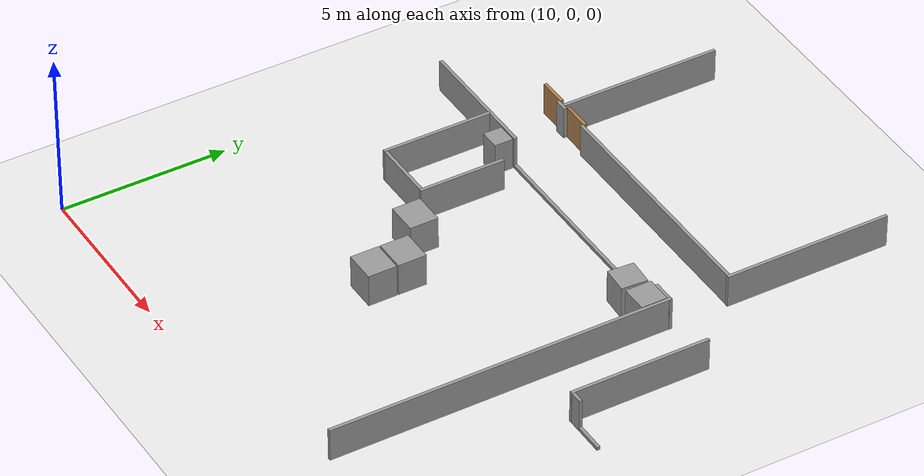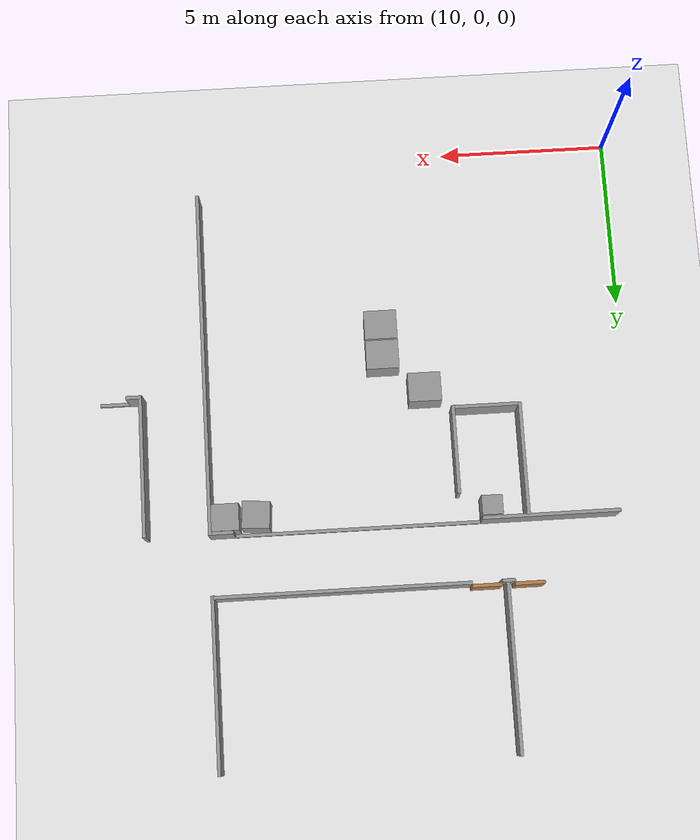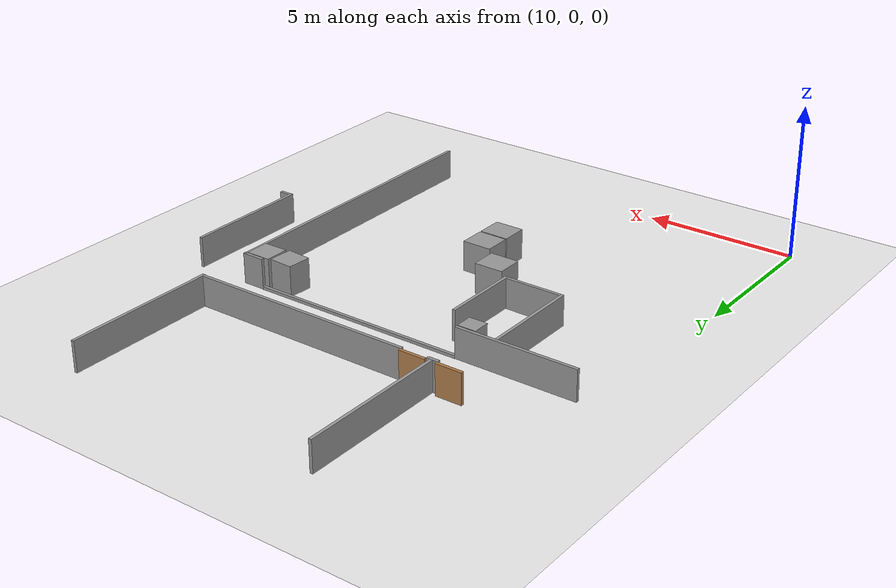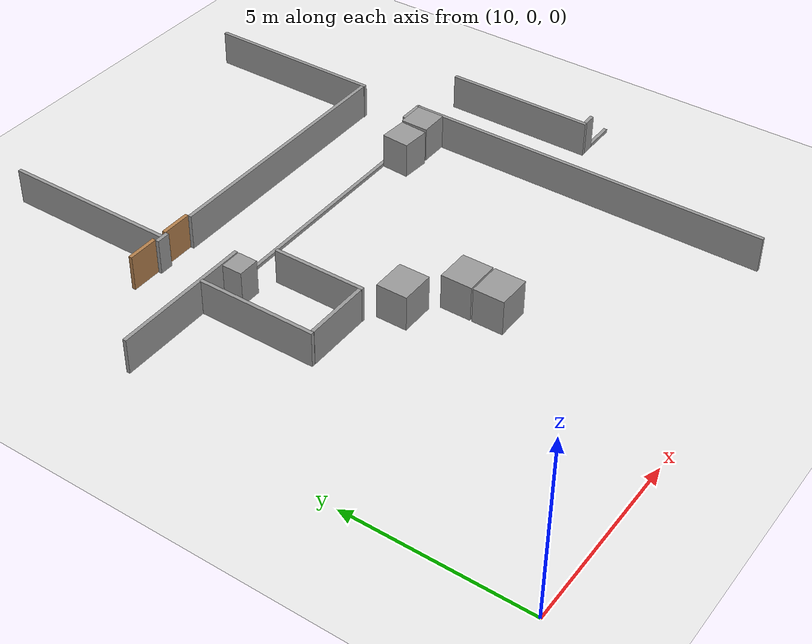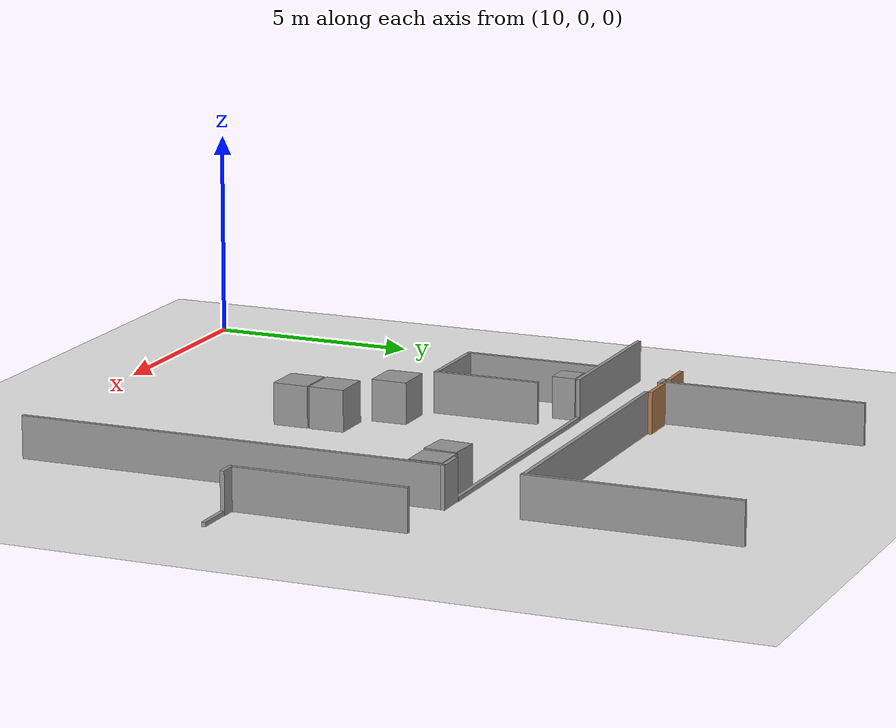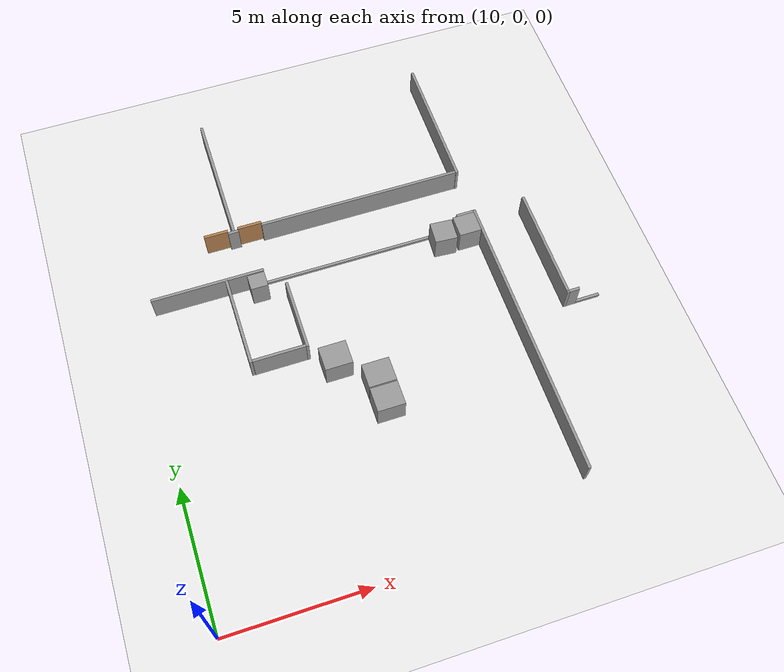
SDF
<sdf version="1.6">
 <world name="default">
  <model name="ground_plane">
   <static>1</static>
   <link name="link">
    <collision name="collision">
     <geometry><plane><normal>0 0 1</normal><size>100 100</size></plane></geometry>
     <surface><friction><ode><mu>100</mu><mu2>50</mu2></ode></friction></surface>
    </collision>
    <visual name="visual">
     <cast_shadows>0</cast_shadows>
     <geometry><plane><normal>0 0 1</normal><size>100 100</size></plane></geometry>
     <material>
      <script><uri>file://media/materials/scripts/gazebo.material</uri><name>Gazebo/WhiteGlow</name></script>
     </material>
    </visual>
   </link>
  </model>
  <model name="L81">
   <link name="link_1">
    <pose>6.1848 40.6724 0.017394 0 -0 0</pose>
    <inertial>
     <mass>0.639519</mass>
     <inertia>
      <ixx>0.0882035</ixx>
      <ixy>0</ixy>
      <ixz>0</ixz>
      <iyy>0.086567</iyy>
      <iyz>0</iyz>
      <izz>0.068184</izz>
     </inertia>
    </inertial>
    <visual name="visual">
     <geometry><box><size>0.790159 0.809357 1</size></box></geometry>
     <material>
      <lighting>1</lighting>
      <script><uri>file://media/materials/scripts/gazebo.material</uri><name>Gazebo/Grey</name></script>
      <shader type="pixel"><normal_map>__default__</normal_map></shader>
      <ambient>0.3 0.3 0.3 1</ambient>
      <diffuse>0.7 0.7 0.7 1</diffuse>
      <specular>0.01 0.01 0.01 1</specular>
      <emissive>0 0 0 1</emissive>
     </material>
    </visual>
    <collision name="collision">
     <geometry><box><size>0.790159 0.809357 1</size></box></geometry>
     <surface>
      <friction>
       <ode><mu>1</mu><mu2>1</mu2><fdir1>0 0 0</fdir1><slip1>0</slip1><slip2>0</slip2></ode>
       <torsional>
        <coefficient>1</coefficient>
        <patch_radius>0</patch_radius>
        <surface_radius>0</surface_radius>
        <use_patch_radius>1</use_patch_radius>
        <ode><slip>0</slip></ode>
       </torsional>
      </friction>
      <bounce><restitution_coefficient>0</restitution_coefficient><threshold>1e+06</threshold></bounce>
      <contact>
       <collide_without_contact>0</collide_without_contact>
       <collide_without_contact_bitmask>1</collide_without_contact_bitmask>
       <collide_bitmask>1</collide_bitmask>
       <ode>
        <soft_cfm>0</soft_cfm>
        <soft_erp>0.2</soft_erp>
        <kp>1e+13</kp>
        <kd>1</kd>
        <max_vel>0.01</max_vel>
        <min_depth>0</min_depth>
       </ode>
       <bullet>
        <split_impulse>1</split_impulse>
        <split_impulse_penetration_threshold>-0.01</split_impulse_penetration_threshold>
        <soft_cfm>0</soft_cfm>
        <soft_erp>0.2</soft_erp>
        <kp>1e+13</kp>
        <kd>1</kd>
       </bullet>
      </contact>
     </surface>
    </collision>
   </link>
   <link name="link_1_clone">
    <pose>6.20714 39.7777 0.017394 -0 -0 -0.068112</pose>
    <inertial>
     <mass>0.639519</mass>
     <inertia>
      <ixx>0.0882035</ixx>
      <ixy>0</ixy>
      <ixz>0</ixz>
      <iyy>0.086567</iyy>
      <iyz>0</iyz>
      <izz>0.068184</izz>
     </inertia>
    </inertial>
    <visual name="visual">
     <geometry><box><size>0.790159 0.809357 1</size></box></geometry>
     <material>
      <lighting>1</lighting>
      <script><uri>file://media/materials/scripts/gazebo.material</uri><name>Gazebo/Grey</name></script>
      <shader type="pixel"><normal_map>__default__</normal_map></shader>
      <ambient>0.3 0.3 0.3 1</ambient>
      <diffuse>0.7 0.7 0.7 1</diffuse>
      <specular>0.01 0.01 0.01 1</specular>
      <emissive>0 0 0 1</emissive>
     </material>
    </visual>
    <collision name="collision">
     <geometry><box><size>0.790159 0.809357 1</size></box></geometry>
     <surface>
      <friction>
       <ode><mu>1</mu><mu2>1</mu2><fdir1>0 0 0</fdir1><slip1>0</slip1><slip2>0</slip2></ode>
       <torsional>
        <coefficient>1</coefficient>
        <patch_radius>0</patch_radius>
        <surface_radius>0</surface_radius>
        <use_patch_radius>1</use_patch_radius>
        <ode><slip>0</slip></ode>
       </torsional>
      </friction>
      <bounce><restitution_coefficient>0</restitution_coefficient><threshold>1e+06</threshold></bounce>
      <contact>
       <collide_without_contact>0</collide_without_contact>
       <collide_without_contact_bitmask>1</collide_without_contact_bitmask>
       <collide_bitmask>1</collide_bitmask>
       <ode>
        <soft_cfm>0</soft_cfm>
        <soft_erp>0.2</soft_erp>
        <kp>1e+13</kp>
        <kd>1</kd>
        <max_vel>0.01</max_vel>
        <min_depth>0</min_depth>
       </ode>
       <bullet>
        <split_impulse>1</split_impulse>
        <split_impulse_penetration_threshold>-0.01</split_impulse_penetration_threshold>
        <soft_cfm>0</soft_cfm>
        <soft_erp>0.2</soft_erp>
        <kp>1e+13</kp>
        <kd>1</kd>
       </bullet>
      </contact>
     </surface>
    </collision>
   </link>
   <link name="link_clone_0_clone_0_clone_0_clone_clone_clone">
    <pose>9.8744 43.2024 0 0 -0 0</pose>
    <inertial>
     <mass>0.0251424</mass>
     <inertia>
      <ixx>0.00252554</ixx>
      <ixy>0</ixy>
      <ixz>0</ixz>
      <iyy>0.00211616</iyy>
      <iyz>0</iyz>
      <izz>0.00045129</izz>
     </inertia>
    </inertial>
    <visual name="visual">
     <geometry><box><size>0.1 0.453202 1</size></box></geometry>
     <material>
      <script><name>Gazebo/Grey</name><uri>file://media/materials/scripts/gazebo.material</uri></script>
      <shader type="pixel"><normal_map>__default__</normal_map></shader>
      <ambient>0.3 0.3 0.3 1</ambient>
      <diffuse>0.7 0.7 0.7 1</diffuse>
      <specular>0.01 0.01 0.01 1</specular>
      <emissive>0 0 0 1</emissive>
     </material>
    </visual>
    <collision name="collision">
     <geometry><box><size>0.1 0.453202 1</size></box></geometry>
     <surface>
      <friction>
       <ode><mu>1</mu><mu2>1</mu2><fdir1>0 0 0</fdir1><slip1>0</slip1><slip2>0</slip2></ode>
       <torsional>
        <coefficient>1</coefficient>
        <patch_radius>0</patch_radius>
        <surface_radius>0</surface_radius>
        <use_patch_radius>1</use_patch_radius>
        <ode><slip>0</slip></ode>
       </torsional>
      </friction>
      <bounce><restitution_coefficient>0</restitution_coefficient><threshold>1e+06</threshold></bounce>
      <contact>
       <collide_without_contact>0</collide_without_contact>
       <collide_without_contact_bitmask>1</collide_without_contact_bitmask>
       <collide_bitmask>1</collide_bitmask>
       <ode>
        <soft_cfm>0</soft_cfm>
        <soft_erp>0.2</soft_erp>
        <kp>1e+13</kp>
        <kd>1</kd>
        <max_vel>0.01</max_vel>
        <min_depth>0</min_depth>
       </ode>
       <bullet>
        <split_impulse>1</split_impulse>
        <split_impulse_penetration_threshold>-0.01</split_impulse_penetration_threshold>
        <soft_cfm>0</soft_cfm>
        <soft_erp>0.2</soft_erp>
        <kp>1e+13</kp>
        <kd>1</kd>
       </bullet>
      </contact>
     </surface>
    </collision>
   </link>
   <link name="link_clone_0_clone_0_clone_2">
    <pose>3.89392 37.3914 -0 0 -0 0</pose>
    <inertial>
     <mass>0.417724</mass>
     <inertia>
      <ixx>1.94639</ixx>
      <ixy>0</ixy>
      <ixz>0</ixz>
      <iyy>0.0351584</iyy>
      <iyz>0</iyz>
      <izz>1.91193</izz>
     </inertia>
    </inertial>
    <visual name="visual">
     <geometry><box><size>0.1 7.41041 1</size></box></geometry>
     <material>
      <script><name>Gazebo/Grey</name><uri>file://media/materials/scripts/gazebo.material</uri></script>
      <shader type="pixel"><normal_map>__default__</normal_map></shader>
      <ambient>0.3 0.3 0.3 1</ambient>
      <diffuse>0.7 0.7 0.7 1</diffuse>
      <specular>0.01 0.01 0.01 1</specular>
      <emissive>0 0 0 1</emissive>
     </material>
    </visual>
    <collision name="collision">
     <geometry><box><size>0.1 7.41041 1</size></box></geometry>
     <surface>
      <friction>
       <ode><mu>1</mu><mu2>1</mu2><fdir1>0 0 0</fdir1><slip1>0</slip1><slip2>0</slip2></ode>
       <torsional>
        <coefficient>1</coefficient>
        <patch_radius>0</patch_radius>
        <surface_radius>0</surface_radius>
        <use_patch_radius>1</use_patch_radius>
        <ode><slip>0</slip></ode>
       </torsional>
      </friction>
      <bounce><restitution_coefficient>0</restitution_coefficient><threshold>1e+06</threshold></bounce>
      <contact>
       <collide_without_contact>0</collide_without_contact>
       <collide_without_contact_bitmask>1</collide_without_contact_bitmask>
       <collide_bitmask>1</collide_bitmask>
       <ode>
        <soft_cfm>0</soft_cfm>
        <soft_erp>0.2</soft_erp>
        <kp>1e+13</kp>
        <kd>1</kd>
        <max_vel>0.01</max_vel>
        <min_depth>0</min_depth>
       </ode>
       <bullet>
        <split_impulse>1</split_impulse>
        <split_impulse_penetration_threshold>-0.01</split_impulse_penetration_threshold>
        <soft_cfm>0</soft_cfm>
        <soft_erp>0.2</soft_erp>
        <kp>1e+13</kp>
        <kd>1</kd>
       </bullet>
      </contact>
     </surface>
    </collision>
   </link>
   <link name="link_clone_0_clone_0_clone_3">
    <pose>3.90051 32.6454 0 0 -0 0</pose>
    <inertial>
     <mass>0.0215676</mass>
     <inertia>
      <ixx>0.0020604</ixx>
      <ixy>0</ixy>
      <ixz>0</ixz>
      <iyy>0.00181527</iyy>
      <iyz>0</iyz>
      <izz>0.000281077</izz>
     </inertia>
    </inertial>
    <visual name="visual">
     <geometry><box><size>0.1 0.382608 1</size></box></geometry>
     <material>
      <script><name>Gazebo/Grey</name><uri>file://media/materials/scripts/gazebo.material</uri></script>
      <shader type="pixel"><normal_map>__default__</normal_map></shader>
      <ambient>0.3 0.3 0.3 1</ambient>
      <diffuse>0.7 0.7 0.7 1</diffuse>
      <specular>0.01 0.01 0.01 1</specular>
      <emissive>0 0 0 1</emissive>
     </material>
    </visual>
    <collision name="collision">
     <geometry><box><size>0.1 0.382608 1</size></box></geometry>
     <surface>
      <friction>
       <ode><mu>1</mu><mu2>1</mu2><fdir1>0 0 0</fdir1><slip1>0</slip1><slip2>0</slip2></ode>
       <torsional>
        <coefficient>1</coefficient>
        <patch_radius>0</patch_radius>
        <surface_radius>0</surface_radius>
        <use_patch_radius>1</use_patch_radius>
        <ode><slip>0</slip></ode>
       </torsional>
      </friction>
      <bounce><restitution_coefficient>0</restitution_coefficient><threshold>1e+06</threshold></bounce>
      <contact>
       <collide_without_contact>0</collide_without_contact>
       <collide_without_contact_bitmask>1</collide_without_contact_bitmask>
       <collide_bitmask>1</collide_bitmask>
       <ode>
        <soft_cfm>0</soft_cfm>
        <soft_erp>0.2</soft_erp>
        <kp>1e+13</kp>
        <kd>1</kd>
        <max_vel>0.01</max_vel>
        <min_depth>0</min_depth>
       </ode>
       <bullet>
        <split_impulse>1</split_impulse>
        <split_impulse_penetration_threshold>-0.01</split_impulse_penetration_threshold>
        <soft_cfm>0</soft_cfm>
        <soft_erp>0.2</soft_erp>
        <kp>1e+13</kp>
        <kd>1</kd>
       </bullet>
      </contact>
     </surface>
    </collision>
   </link>
   <link name="link_clone_0_clone_clone_0_clone_clone_clone_0">
    <pose>5.73609 31.2609 0 0 -0 0</pose>
    <inertial>
     <mass>1.43236</mass>
     <inertia><ixx>2.03597</ixx><ixy>0</ixy><ixz>0</ixz><iyy>0.120557</iyy><iyz>0</iyz><izz>1.9178</izz></inertia>
    </inertial>
    <visual name="visual">
     <geometry><box><size>0.1 4.0071 1</size></box></geometry>
     <material>
      <script><name>Gazebo/Grey</name><uri>file://media/materials/scripts/gazebo.material</uri></script>
      <shader type="pixel"><normal_map>__default__</normal_map></shader>
      <ambient>0.3 0.3 0.3 1</ambient>
      <diffuse>0.7 0.7 0.7 1</diffuse>
      <specular>0.01 0.01 0.01 1</specular>
      <emissive>0 0 0 1</emissive>
     </material>
    </visual>
    <collision name="collision">
     <geometry><box><size>0.1 4.0071 1</size></box></geometry>
     <surface>
      <friction>
       <ode><mu>1</mu><mu2>1</mu2><fdir1>0 0 0</fdir1><slip1>0</slip1><slip2>0</slip2></ode>
       <torsional>
        <coefficient>1</coefficient>
        <patch_radius>0</patch_radius>
        <surface_radius>0</surface_radius>
        <use_patch_radius>1</use_patch_radius>
        <ode><slip>0</slip></ode>
       </torsional>
      </friction>
      <bounce><restitution_coefficient>0</restitution_coefficient><threshold>1e+06</threshold></bounce>
      <contact>
       <collide_without_contact>0</collide_without_contact>
       <collide_without_contact_bitmask>1</collide_without_contact_bitmask>
       <collide_bitmask>1</collide_bitmask>
       <ode>
        <soft_cfm>0</soft_cfm>
        <soft_erp>0.2</soft_erp>
        <kp>1e+13</kp>
        <kd>1</kd>
        <max_vel>0.01</max_vel>
        <min_depth>0</min_depth>
       </ode>
       <bullet>
        <split_impulse>1</split_impulse>
        <split_impulse_penetration_threshold>-0.01</split_impulse_penetration_threshold>
        <soft_cfm>0</soft_cfm>
        <soft_erp>0.2</soft_erp>
        <kp>1e+13</kp>
        <kd>1</kd>
       </bullet>
      </contact>
     </surface>
    </collision>
   </link>
   <link name="link_clone_0_clone_clone_0_clone_clone_clone_1_clone_0_clone_0">
    <pose>5.73871 40.8124 0 0 -0 0</pose>
    <inertial>
     <mass>0.262825</mass>
     <inertia>
      <ixx>0.0337428</ixx>
      <ixy>0</ixy>
      <ixz>0</ixz>
      <iyy>0.0221211</iyy>
      <iyz>0</iyz>
      <izz>0.0120597</izz>
     </inertia>
    </inertial>
    <visual name="visual">
     <geometry><box><size>0.1 0.735267 1</size></box></geometry>
     <material>
      <script><name>Gazebo/Grey</name><uri>file://media/materials/scripts/gazebo.material</uri></script>
      <shader type="pixel"><normal_map>__default__</normal_map></shader>
      <ambient>0.3 0.3 0.3 1</ambient>
      <diffuse>0.7 0.7 0.7 1</diffuse>
      <specular>0.01 0.01 0.01 1</specular>
      <emissive>0 0 0 1</emissive>
     </material>
    </visual>
    <collision name="collision">
     <geometry><box><size>0.1 0.735267 1</size></box></geometry>
     <surface>
      <friction>
       <ode><mu>1</mu><mu2>1</mu2><fdir1>0 0 0</fdir1><slip1>0</slip1><slip2>0</slip2></ode>
       <torsional>
        <coefficient>1</coefficient>
        <patch_radius>0</patch_radius>
        <surface_radius>0</surface_radius>
        <use_patch_radius>1</use_patch_radius>
        <ode><slip>0</slip></ode>
       </torsional>
      </friction>
      <bounce><restitution_coefficient>0</restitution_coefficient><threshold>1e+06</threshold></bounce>
      <contact>
       <collide_without_contact>0</collide_without_contact>
       <collide_without_contact_bitmask>1</collide_without_contact_bitmask>
       <collide_bitmask>1</collide_bitmask>
       <ode>
        <soft_cfm>0</soft_cfm>
        <soft_erp>0.2</soft_erp>
        <kp>1e+13</kp>
        <kd>1</kd>
        <max_vel>0.01</max_vel>
        <min_depth>0</min_depth>
       </ode>
       <bullet>
        <split_impulse>1</split_impulse>
        <split_impulse_penetration_threshold>-0.01</split_impulse_penetration_threshold>
        <soft_cfm>0</soft_cfm>
        <soft_erp>0.2</soft_erp>
        <kp>1e+13</kp>
        <kd>1</kd>
       </bullet>
      </contact>
     </surface>
    </collision>
   </link>
   <link name="link_clone_0_clone_clone_0_clone_clone_clone_1_clone_0_clone_clone_clone">
    <pose>5.73673 36.8477 -0.459597 0 -0 0</pose>
    <inertial>
     <mass>2.56764</mass>
     <inertia><ixx>11.2543</ixx><ixy>0</ixy><ixz>0</ixz><iyy>0.21611</iyy><iyz>0</iyz><izz>11.0424</izz></inertia>
    </inertial>
    <visual name="visual">
     <geometry><box><size>0.1 7.18313 0.1</size></box></geometry>
     <material>
      <script><name>Gazebo/Grey</name><uri>file://media/materials/scripts/gazebo.material</uri></script>
      <shader type="pixel"><normal_map>__default__</normal_map></shader>
      <ambient>0.3 0.3 0.3 1</ambient>
      <diffuse>0.7 0.7 0.7 1</diffuse>
      <specular>0.01 0.01 0.01 1</specular>
      <emissive>0 0 0 1</emissive>
     </material>
    </visual>
    <collision name="collision">
     <geometry><box><size>0.1 7.18313 0.1</size></box></geometry>
     <surface>
      <friction>
       <ode><mu>1</mu><mu2>1</mu2><fdir1>0 0 0</fdir1><slip1>0</slip1><slip2>0</slip2></ode>
       <torsional>
        <coefficient>1</coefficient>
        <patch_radius>0</patch_radius>
        <surface_radius>0</surface_radius>
        <use_patch_radius>1</use_patch_radius>
        <ode><slip>0</slip></ode>
       </torsional>
      </friction>
      <bounce><restitution_coefficient>0</restitution_coefficient><threshold>1e+06</threshold></bounce>
      <contact>
       <collide_without_contact>0</collide_without_contact>
       <collide_without_contact_bitmask>1</collide_without_contact_bitmask>
       <collide_bitmask>1</collide_bitmask>
       <ode>
        <soft_cfm>0</soft_cfm>
        <soft_erp>0.2</soft_erp>
        <kp>1e+13</kp>
        <kd>1</kd>
        <max_vel>0.01</max_vel>
        <min_depth>0</min_depth>
       </ode>
       <bullet>
        <split_impulse>1</split_impulse>
        <split_impulse_penetration_threshold>-0.01</split_impulse_penetration_threshold>
        <soft_cfm>0</soft_cfm>
        <soft_erp>0.2</soft_erp>
        <kp>1e+13</kp>
        <kd>1</kd>
       </bullet>
      </contact>
     </surface>
    </collision>
   </link>
   <link name="link_clone_0_clone_clone_0_clone_clone_clone_1_clone_0_clone_clone_clone_2_clone_clone_clone">
    <pose>9.87755 43.8758 -0.44204 0 -0 0</pose>
    <inertial>
     <mass>0.433251</mass>
     <inertia>
      <ixx>0.0891427</ixx>
      <ixy>0</ixy>
      <ixz>0</ixz>
      <iyy>0.0364653</iyy>
      <iyz>0</iyz>
      <izz>0.0533995</izz>
     </inertia>
    </inertial>
    <visual name="visual">
     <geometry><box><size>0.1 0.9 0.1</size></box></geometry>
     <material>
      <script><name>Gazebo/Grey</name><uri>file://media/materials/scripts/gazebo.material</uri></script>
      <shader type="pixel"><normal_map>__default__</normal_map></shader>
      <ambient>0.3 0.3 0.3 1</ambient>
      <diffuse>0.7 0.7 0.7 1</diffuse>
      <specular>0.01 0.01 0.01 1</specular>
      <emissive>0 0 0 1</emissive>
     </material>
    </visual>
    <collision name="collision">
     <geometry><box><size>0.1 0.9 0.1</size></box></geometry>
     <surface>
      <friction>
       <ode><mu>1</mu><mu2>1</mu2><fdir1>0 0 0</fdir1><slip1>0</slip1><slip2>0</slip2></ode>
       <torsional>
        <coefficient>1</coefficient>
        <patch_radius>0</patch_radius>
        <surface_radius>0</surface_radius>
        <use_patch_radius>1</use_patch_radius>
        <ode><slip>0</slip></ode>
       </torsional>
      </friction>
      <bounce><restitution_coefficient>0</restitution_coefficient><threshold>1e+06</threshold></bounce>
      <contact>
       <collide_without_contact>0</collide_without_contact>
       <collide_without_contact_bitmask>1</collide_without_contact_bitmask>
       <collide_bitmask>1</collide_bitmask>
       <ode>
        <soft_cfm>0</soft_cfm>
        <soft_erp>0.2</soft_erp>
        <kp>1e+13</kp>
        <kd>1</kd>
        <max_vel>0.01</max_vel>
        <min_depth>0</min_depth>
       </ode>
       <bullet>
        <split_impulse>1</split_impulse>
        <split_impulse_penetration_threshold>-0.01</split_impulse_penetration_threshold>
        <soft_cfm>0</soft_cfm>
        <soft_erp>0.2</soft_erp>
        <kp>1e+13</kp>
        <kd>1</kd>
       </bullet>
      </contact>
     </surface>
    </collision>
   </link>
   <link name="link_clone_0_clone_clone_0_clone_clone_clone_1_clone_1_clone_clone_clone_clone">
    <pose>9.0385 32.9029 0 0 -0 0</pose>
    <inertial>
     <mass>0.280797</mass>
     <inertia>
      <ixx>0.103765</ixx>
      <ixy>0</ixy>
      <ixz>0</ixz>
      <iyy>0.0236337</iyy>
      <iyz>0</iyz>
      <izz>0.0805993</izz>
     </inertia>
    </inertial>
    <visual name="visual">
     <geometry><box><size>0.1 1.85323 1</size></box></geometry>
     <material>
      <script><name>Gazebo/Grey</name><uri>file://media/materials/scripts/gazebo.material</uri></script>
      <shader type="pixel"><normal_map>__default__</normal_map></shader>
      <ambient>0.3 0.3 0.3 1</ambient>
      <diffuse>0.7 0.7 0.7 1</diffuse>
      <specular>0.01 0.01 0.01 1</specular>
      <emissive>0 0 0 1</emissive>
     </material>
    </visual>
    <collision name="collision">
     <geometry><box><size>0.1 1.85323 1</size></box></geometry>
     <surface>
      <friction>
       <ode><mu>1</mu><mu2>1</mu2><fdir1>0 0 0</fdir1><slip1>0</slip1><slip2>0</slip2></ode>
       <torsional>
        <coefficient>1</coefficient>
        <patch_radius>0</patch_radius>
        <surface_radius>0</surface_radius>
        <use_patch_radius>1</use_patch_radius>
        <ode><slip>0</slip></ode>
       </torsional>
      </friction>
      <bounce><restitution_coefficient>0</restitution_coefficient><threshold>1e+06</threshold></bounce>
      <contact>
       <collide_without_contact>0</collide_without_contact>
       <collide_without_contact_bitmask>1</collide_without_contact_bitmask>
       <collide_bitmask>1</collide_bitmask>
       <ode>
        <soft_cfm>0</soft_cfm>
        <soft_erp>0.2</soft_erp>
        <kp>1e+13</kp>
        <kd>1</kd>
        <max_vel>0.01</max_vel>
        <min_depth>0</min_depth>
       </ode>
       <bullet>
        <split_impulse>1</split_impulse>
        <split_impulse_penetration_threshold>-0.01</split_impulse_penetration_threshold>
        <soft_cfm>0</soft_cfm>
        <soft_erp>0.2</soft_erp>
        <kp>1e+13</kp>
        <kd>1</kd>
       </bullet>
      </contact>
     </surface>
    </collision>
   </link>
   <link name="link_clone_0_clone_clone_0_clone_clone_clone_2_clone">
    <pose>3.79519 32.0379 -0 0 -0 0</pose>
    <inertial>
     <mass>1.01517</mass>
     <inertia><ixx>5.4708</ixx><ixy>0</ixy><ixz>0</ixz><iyy>0.0854436</iyy><iyz>0</iyz><izz>5.38705</izz></inertia>
    </inertial>
    <visual name="visual">
     <geometry><box><size>0.1 0.87 1</size></box></geometry>
     <material>
      <script><name>Gazebo/Wood</name><uri>file://media/materials/scripts/gazebo.material</uri></script>
      <shader type="pixel"><normal_map>__default__</normal_map></shader>
      <ambient>0.3 0.3 0.3 1</ambient>
      <diffuse>0.7 0.7 0.7 1</diffuse>
      <specular>0.01 0.01 0.01 1</specular>
      <emissive>0 0 0 1</emissive>
     </material>
    </visual>
    <collision name="collision">
     <geometry><box><size>0.1 0.87 1</size></box></geometry>
     <surface>
      <friction>
       <ode><mu>1</mu><mu2>1</mu2><fdir1>0 0 0</fdir1><slip1>0</slip1><slip2>0</slip2></ode>
       <torsional>
        <coefficient>1</coefficient>
        <patch_radius>0</patch_radius>
        <surface_radius>0</surface_radius>
        <use_patch_radius>1</use_patch_radius>
        <ode><slip>0</slip></ode>
       </torsional>
      </friction>
      <bounce><restitution_coefficient>0</restitution_coefficient><threshold>1e+06</threshold></bounce>
      <contact>
       <collide_without_contact>0</collide_without_contact>
       <collide_without_contact_bitmask>1</collide_without_contact_bitmask>
       <collide_bitmask>1</collide_bitmask>
       <ode>
        <soft_cfm>0</soft_cfm>
        <soft_erp>0.2</soft_erp>
        <kp>1e+13</kp>
        <kd>1</kd>
        <max_vel>0.01</max_vel>
        <min_depth>0</min_depth>
       </ode>
       <bullet>
        <split_impulse>1</split_impulse>
        <split_impulse_penetration_threshold>-0.01</split_impulse_penetration_threshold>
        <soft_cfm>0</soft_cfm>
        <soft_erp>0.2</soft_erp>
        <kp>1e+13</kp>
        <kd>1</kd>
       </bullet>
      </contact>
     </surface>
    </collision>
   </link>
   <link name="link_clone_0_clone_clone_0_clone_clone_clone_2_clone_clone">
    <pose>3.7954 33.2651 -0 0 -0 0</pose>
    <inertial>
     <mass>1.01517</mass>
     <inertia><ixx>5.4708</ixx><ixy>0</ixy><ixz>0</ixz><iyy>0.0854436</iyy><iyz>0</iyz><izz>5.38705</izz></inertia>
    </inertial>
    <visual name="visual">
     <geometry><box><size>0.1 0.87 1</size></box></geometry>
     <material>
      <script><name>Gazebo/Wood</name><uri>file://media/materials/scripts/gazebo.material</uri></script>
      <shader type="pixel"><normal_map>__default__</normal_map></shader>
      <ambient>0.3 0.3 0.3 1</ambient>
      <diffuse>0.7 0.7 0.7 1</diffuse>
      <specular>0.01 0.01 0.01 1</specular>
      <emissive>0 0 0 1</emissive>
     </material>
    </visual>
    <collision name="collision">
     <geometry><box><size>0.1 0.87 1</size></box></geometry>
     <surface>
      <friction>
       <ode><mu>1</mu><mu2>1</mu2><fdir1>0 0 0</fdir1><slip1>0</slip1><slip2>0</slip2></ode>
       <torsional>
        <coefficient>1</coefficient>
        <patch_radius>0</patch_radius>
        <surface_radius>0</surface_radius>
        <use_patch_radius>1</use_patch_radius>
        <ode><slip>0</slip></ode>
       </torsional>
      </friction>
      <bounce><restitution_coefficient>0</restitution_coefficient><threshold>1e+06</threshold></bounce>
      <contact>
       <collide_without_contact>0</collide_without_contact>
       <collide_without_contact_bitmask>1</collide_without_contact_bitmask>
       <collide_bitmask>1</collide_bitmask>
       <ode>
        <soft_cfm>0</soft_cfm>
        <soft_erp>0.2</soft_erp>
        <kp>1e+13</kp>
        <kd>1</kd>
        <max_vel>0.01</max_vel>
        <min_depth>0</min_depth>
       </ode>
       <bullet>
        <split_impulse>1</split_impulse>
        <split_impulse_penetration_threshold>-0.01</split_impulse_penetration_threshold>
        <soft_cfm>0</soft_cfm>
        <soft_erp>0.2</soft_erp>
        <kp>1e+13</kp>
        <kd>1</kd>
       </bullet>
      </contact>
     </surface>
    </collision>
   </link>
   <link name="link_clone_0_clone_clone_0_clone_clone_clone_2_clone_clone_0">
    <pose>6.10303 32.9506 0 0 -0 0</pose>
    <inertial>
     <mass>4.04511</mass>
     <inertia>
      <ixx>0.462473</ixx>
      <ixy>0</ixy>
      <ixz>0</ixz>
      <iyy>0.446013</iyy>
      <iyz>0</iyz>
      <izz>0.234301</izz>
     </inertia>
    </inertial>
    <visual name="visual">
     <geometry><box><size>0.568435 0.609874 1</size></box></geometry>
     <material>
      <script><name>Gazebo/Grey</name><uri>file://media/materials/scripts/gazebo.material</uri></script>
      <shader type="pixel"><normal_map>__default__</normal_map></shader>
      <ambient>0.3 0.3 0.3 1</ambient>
      <diffuse>0.7 0.7 0.7 1</diffuse>
      <specular>0.01 0.01 0.01 1</specular>
      <emissive>0 0 0 1</emissive>
     </material>
    </visual>
    <collision name="collision">
     <geometry><box><size>0.568435 0.609874 1</size></box></geometry>
     <surface>
      <friction>
       <ode><mu>1</mu><mu2>1</mu2><fdir1>0 0 0</fdir1><slip1>0</slip1><slip2>0</slip2></ode>
       <torsional>
        <coefficient>1</coefficient>
        <patch_radius>0</patch_radius>
        <surface_radius>0</surface_radius>
        <use_patch_radius>1</use_patch_radius>
        <ode><slip>0</slip></ode>
       </torsional>
      </friction>
      <bounce><restitution_coefficient>0</restitution_coefficient><threshold>1e+06</threshold></bounce>
      <contact>
       <collide_without_contact>0</collide_without_contact>
       <collide_without_contact_bitmask>1</collide_without_contact_bitmask>
       <collide_bitmask>1</collide_bitmask>
       <ode>
        <soft_cfm>0</soft_cfm>
        <soft_erp>0.2</soft_erp>
        <kp>1e+13</kp>
        <kd>1</kd>
        <max_vel>0.01</max_vel>
        <min_depth>0</min_depth>
       </ode>
       <bullet>
        <split_impulse>1</split_impulse>
        <split_impulse_penetration_threshold>-0.01</split_impulse_penetration_threshold>
        <soft_cfm>0</soft_cfm>
        <soft_erp>0.2</soft_erp>
        <kp>1e+13</kp>
        <kd>1</kd>
       </bullet>
      </contact>
     </surface>
    </collision>
   </link>
   <link name="link_clone_0_clone_clone_0_clone_clone_clone_2_clone_clone_0_clone_3">
    <pose>9.69841 34.6691 0 0 -0 0</pose>
    <inertial>
     <mass>9.70174</mass>
     <inertia><ixx>1.55976</ixx><ixy>0</ixy><ixz>0</ixz><iyy>1.40994</iyy><iyz>0</iyz><izz>1.35274</izz></inertia>
    </inertial>
    <visual name="visual">
     <geometry><box><size>0.862521 0.96398 1</size></box></geometry>
     <material>
      <script><name>Gazebo/Grey</name><uri>file://media/materials/scripts/gazebo.material</uri></script>
      <shader type="pixel"><normal_map>__default__</normal_map></shader>
      <ambient>0.3 0.3 0.3 1</ambient>
      <diffuse>0.7 0.7 0.7 1</diffuse>
      <specular>0.01 0.01 0.01 1</specular>
      <emissive>0 0 0 1</emissive>
     </material>
    </visual>
    <collision name="collision">
     <geometry><box><size>0.862521 0.96398 1</size></box></geometry>
     <surface>
      <friction>
       <ode><mu>1</mu><mu2>1</mu2><fdir1>0 0 0</fdir1><slip1>0</slip1><slip2>0</slip2></ode>
       <torsional>
        <coefficient>1</coefficient>
        <patch_radius>0</patch_radius>
        <surface_radius>0</surface_radius>
        <use_patch_radius>1</use_patch_radius>
        <ode><slip>0</slip></ode>
       </torsional>
      </friction>
      <bounce><restitution_coefficient>0</restitution_coefficient><threshold>1e+06</threshold></bounce>
      <contact>
       <collide_without_contact>0</collide_without_contact>
       <collide_without_contact_bitmask>1</collide_without_contact_bitmask>
       <collide_bitmask>1</collide_bitmask>
       <ode>
        <soft_cfm>0</soft_cfm>
        <soft_erp>0.2</soft_erp>
        <kp>1e+13</kp>
        <kd>1</kd>
        <max_vel>0.01</max_vel>
        <min_depth>0</min_depth>
       </ode>
       <bullet>
        <split_impulse>1</split_impulse>
        <split_impulse_penetration_threshold>-0.01</split_impulse_penetration_threshold>
        <soft_cfm>0</soft_cfm>
        <soft_erp>0.2</soft_erp>
        <kp>1e+13</kp>
        <kd>1</kd>
       </bullet>
      </contact>
     </surface>
    </collision>
   </link>
   <link name="link_clone_0_clone_clone_0_clone_clone_clone_2_clone_clone_0_clone_3_clone_0">
    <pose>10.7479 35.851 -0 0 -0 0</pose>
    <inertial>
     <mass>9.70174</mass>
     <inertia><ixx>1.55976</ixx><ixy>0</ixy><ixz>0</ixz><iyy>1.40994</iyy><iyz>0</iyz><izz>1.35274</izz></inertia>
    </inertial>
    <visual name="visual">
     <geometry><box><size>0.862521 0.96398 1</size></box></geometry>
     <material>
      <script><name>Gazebo/Grey</name><uri>file://media/materials/scripts/gazebo.material</uri></script>
      <shader type="pixel"><normal_map>__default__</normal_map></shader>
      <ambient>0.3 0.3 0.3 1</ambient>
      <diffuse>0.7 0.7 0.7 1</diffuse>
      <specular>0.01 0.01 0.01 1</specular>
      <emissive>0 0 0 1</emissive>
     </material>
    </visual>
    <collision name="collision">
     <geometry><box><size>0.862521 0.96398 1</size></box></geometry>
     <surface>
      <friction>
       <ode><mu>1</mu><mu2>1</mu2><fdir1>0 0 0</fdir1><slip1>0</slip1><slip2>0</slip2></ode>
       <torsional>
        <coefficient>1</coefficient>
        <patch_radius>0</patch_radius>
        <surface_radius>0</surface_radius>
        <use_patch_radius>1</use_patch_radius>
        <ode><slip>0</slip></ode>
       </torsional>
      </friction>
      <bounce><restitution_coefficient>0</restitution_coefficient><threshold>1e+06</threshold></bounce>
      <contact>
       <collide_without_contact>0</collide_without_contact>
       <collide_without_contact_bitmask>1</collide_without_contact_bitmask>
       <collide_bitmask>1</collide_bitmask>
       <ode>
        <soft_cfm>0</soft_cfm>
        <soft_erp>0.2</soft_erp>
        <kp>1e+13</kp>
        <kd>1</kd>
        <max_vel>0.01</max_vel>
        <min_depth>0</min_depth>
       </ode>
       <bullet>
        <split_impulse>1</split_impulse>
        <split_impulse_penetration_threshold>-0.01</split_impulse_penetration_threshold>
        <soft_cfm>0</soft_cfm>
        <soft_erp>0.2</soft_erp>
        <kp>1e+13</kp>
        <kd>1</kd>
       </bullet>
      </contact>
     </surface>
    </collision>
   </link>
   <link name="link_clone_0_clone_clone_0_clone_clone_clone_2_clone_clone_0_clone_3_clone_1">
    <pose>11.6547 35.8508 -0 0 -0 0</pose>
    <inertial>
     <mass>9.70174</mass>
     <inertia><ixx>1.55976</ixx><ixy>0</ixy><ixz>0</ixz><iyy>1.40994</iyy><iyz>0</iyz><izz>1.35274</izz></inertia>
    </inertial>
    <visual name="visual">
     <geometry><box><size>0.862521 0.96398 1</size></box></geometry>
     <material>
      <script><name>Gazebo/Grey</name><uri>file://media/materials/scripts/gazebo.material</uri></script>
      <shader type="pixel"><normal_map>__default__</normal_map></shader>
      <ambient>0.3 0.3 0.3 1</ambient>
      <diffuse>0.7 0.7 0.7 1</diffuse>
      <specular>0.01 0.01 0.01 1</specular>
      <emissive>0 0 0 1</emissive>
     </material>
    </visual>
    <collision name="collision">
     <geometry><box><size>0.862521 0.96398 1</size></box></geometry>
     <surface>
      <friction>
       <ode><mu>1</mu><mu2>1</mu2><fdir1>0 0 0</fdir1><slip1>0</slip1><slip2>0</slip2></ode>
       <torsional>
        <coefficient>1</coefficient>
        <patch_radius>0</patch_radius>
        <surface_radius>0</surface_radius>
        <use_patch_radius>1</use_patch_radius>
        <ode><slip>0</slip></ode>
       </torsional>
      </friction>
      <bounce><restitution_coefficient>0</restitution_coefficient><threshold>1e+06</threshold></bounce>
      <contact>
       <collide_without_contact>0</collide_without_contact>
       <collide_without_contact_bitmask>1</collide_without_contact_bitmask>
       <collide_bitmask>1</collide_bitmask>
       <ode>
        <soft_cfm>0</soft_cfm>
        <soft_erp>0.2</soft_erp>
        <kp>1e+13</kp>
        <kd>1</kd>
        <max_vel>0.01</max_vel>
        <min_depth>0</min_depth>
       </ode>
       <bullet>
        <split_impulse>1</split_impulse>
        <split_impulse_penetration_threshold>-0.01</split_impulse_penetration_threshold>
        <soft_cfm>0</soft_cfm>
        <soft_erp>0.2</soft_erp>
        <kp>1e+13</kp>
        <kd>1</kd>
       </bullet>
      </contact>
     </surface>
    </collision>
   </link>
   <link name="link_clone_clone_clone_0">
    <pose>1.43965 41.1196 0 0 -0 0</pose>
    <inertial>
     <mass>1.92129</mass>
     <inertia><ixx>0.161708</ixx><ixy>0</ixy><ixz>0</ixz><iyy>4.21704</iyy><iyz>0</iyz><izz>4.05853</izz></inertia>
    </inertial>
    <visual name="visual">
     <geometry><box><size>5.03377 0.1 1</size></box></geometry>
     <material>
      <script><name>Gazebo/Grey</name><uri>file://media/materials/scripts/gazebo.material</uri></script>
      <shader type="pixel"><normal_map>__default__</normal_map></shader>
      <ambient>0.3 0.3 0.3 1</ambient>
      <diffuse>0.7 0.7 0.7 1</diffuse>
      <specular>0.01 0.01 0.01 1</specular>
      <emissive>0 0 0 1</emissive>
     </material>
    </visual>
    <collision name="collision">
     <geometry><box><size>5.03377 0.1 1</size></box></geometry>
     <surface>
      <friction>
       <ode><mu>1</mu><mu2>1</mu2><fdir1>0 0 0</fdir1><slip1>0</slip1><slip2>0</slip2></ode>
       <torsional>
        <coefficient>1</coefficient>
        <patch_radius>0</patch_radius>
        <surface_radius>0</surface_radius>
        <use_patch_radius>1</use_patch_radius>
        <ode><slip>0</slip></ode>
       </torsional>
      </friction>
      <bounce><restitution_coefficient>0</restitution_coefficient><threshold>1e+06</threshold></bounce>
      <contact>
       <collide_without_contact>0</collide_without_contact>
       <collide_without_contact_bitmask>1</collide_without_contact_bitmask>
       <collide_bitmask>1</collide_bitmask>
       <ode>
        <soft_cfm>0</soft_cfm>
        <soft_erp>0.2</soft_erp>
        <kp>1e+13</kp>
        <kd>1</kd>
        <max_vel>0.01</max_vel>
        <min_depth>0</min_depth>
       </ode>
       <bullet>
        <split_impulse>1</split_impulse>
        <split_impulse_penetration_threshold>-0.01</split_impulse_penetration_threshold>
        <soft_cfm>0</soft_cfm>
        <soft_erp>0.2</soft_erp>
        <kp>1e+13</kp>
        <kd>1</kd>
       </bullet>
      </contact>
     </surface>
    </collision>
   </link>
   <link name="link_clone_clone_clone_clone_0_clone_clone_0">
    <pose>10.8455 41.1211 -0 0 -0 0</pose>
    <inertial>
     <mass>3.06623</mass>
     <inertia><ixx>0.258074</ixx><ixy>0</ixy><ixz>0</ixz><iyy>27.3748</iyy><iyz>0</iyz><izz>27.1218</izz></inertia>
    </inertial>
    <visual name="visual">
     <geometry><box><size>10.3021 0.1 1</size></box></geometry>
     <material>
      <script><name>Gazebo/Grey</name><uri>file://media/materials/scripts/gazebo.material</uri></script>
      <shader type="pixel"><normal_map>__default__</normal_map></shader>
      <ambient>0.3 0.3 0.3 1</ambient>
      <diffuse>0.7 0.7 0.7 1</diffuse>
      <specular>0.01 0.01 0.01 1</specular>
      <emissive>0 0 0 1</emissive>
     </material>
    </visual>
    <collision name="collision">
     <geometry><box><size>10.3021 0.1 1</size></box></geometry>
     <surface>
      <friction>
       <ode><mu>1</mu><mu2>1</mu2><fdir1>0 0 0</fdir1><slip1>0</slip1><slip2>0</slip2></ode>
       <torsional>
        <coefficient>1</coefficient>
        <patch_radius>0</patch_radius>
        <surface_radius>0</surface_radius>
        <use_patch_radius>1</use_patch_radius>
        <ode><slip>0</slip></ode>
       </torsional>
      </friction>
      <bounce><restitution_coefficient>0</restitution_coefficient><threshold>1e+06</threshold></bounce>
      <contact>
       <collide_without_contact>0</collide_without_contact>
       <collide_without_contact_bitmask>1</collide_without_contact_bitmask>
       <collide_bitmask>1</collide_bitmask>
       <ode>
        <soft_cfm>0</soft_cfm>
        <soft_erp>0.2</soft_erp>
        <kp>1e+13</kp>
        <kd>1</kd>
        <max_vel>0.01</max_vel>
        <min_depth>0</min_depth>
       </ode>
       <bullet>
        <split_impulse>1</split_impulse>
        <split_impulse_penetration_threshold>-0.01</split_impulse_penetration_threshold>
        <soft_cfm>0</soft_cfm>
        <soft_erp>0.2</soft_erp>
        <kp>1e+13</kp>
        <kd>1</kd>
       </bullet>
      </contact>
     </surface>
    </collision>
   </link>
   <link name="link_clone_clone_clone_clone_0_clone_clone_0_clone">
    <pose>7.82675 43.0123 -0 0 -0 0</pose>
    <inertial>
     <mass>3.06623</mass>
     <inertia><ixx>0.258074</ixx><ixy>0</ixy><ixz>0</ixz><iyy>27.3748</iyy><iyz>0</iyz><izz>27.1218</izz></inertia>
    </inertial>
    <visual name="visual">
     <geometry><box><size>4.2 0.1 1</size></box></geometry>
     <material>
      <script><name>Gazebo/Grey</name><uri>file://media/materials/scripts/gazebo.material</uri></script>
      <shader type="pixel"><normal_map>__default__</normal_map></shader>
      <ambient>0.3 0.3 0.3 1</ambient>
      <diffuse>0.7 0.7 0.7 1</diffuse>
      <specular>0.01 0.01 0.01 1</specular>
      <emissive>0 0 0 1</emissive>
     </material>
    </visual>
    <collision name="collision">
     <geometry><box><size>4.2 0.1 1</size></box></geometry>
     <surface>
      <friction>
       <ode><mu>1</mu><mu2>1</mu2><fdir1>0 0 0</fdir1><slip1>0</slip1><slip2>0</slip2></ode>
       <torsional>
        <coefficient>1</coefficient>
        <patch_radius>0</patch_radius>
        <surface_radius>0</surface_radius>
        <use_patch_radius>1</use_patch_radius>
        <ode><slip>0</slip></ode>
       </torsional>
      </friction>
      <bounce><restitution_coefficient>0</restitution_coefficient><threshold>1e+06</threshold></bounce>
      <contact>
       <collide_without_contact>0</collide_without_contact>
       <collide_without_contact_bitmask>1</collide_without_contact_bitmask>
       <collide_bitmask>1</collide_bitmask>
       <ode>
        <soft_cfm>0</soft_cfm>
        <soft_erp>0.2</soft_erp>
        <kp>1e+13</kp>
        <kd>1</kd>
        <max_vel>0.01</max_vel>
        <min_depth>0</min_depth>
       </ode>
       <bullet>
        <split_impulse>1</split_impulse>
        <split_impulse_penetration_threshold>-0.01</split_impulse_penetration_threshold>
        <soft_cfm>0</soft_cfm>
        <soft_erp>0.2</soft_erp>
        <kp>1e+13</kp>
        <kd>1</kd>
       </bullet>
      </contact>
     </surface>
    </collision>
   </link>
   <link name="link_clone_clone_clone_clone_0_clone_clone_clone_0_clone_1_clone">
    <pose>7.42033 31.9226 -0 0 -0 0</pose>
    <inertial>
     <mass>0.989949</mass>
     <inertia>
      <ixx>0.0833207</ixx>
      <ixy>0</ixy>
      <ixz>0</ixz>
      <iyy>0.995139</iyy>
      <iyz>0</iyz>
      <izz>0.913468</izz>
     </inertia>
    </inertial>
    <visual name="visual">
     <geometry><box><size>3.3261 0.1 1</size></box></geometry>
     <material>
      <script><name>Gazebo/Grey</name><uri>file://media/materials/scripts/gazebo.material</uri></script>
      <shader type="pixel"><normal_map>__default__</normal_map></shader>
      <ambient>0.3 0.3 0.3 1</ambient>
      <diffuse>0.7 0.7 0.7 1</diffuse>
      <specular>0.01 0.01 0.01 1</specular>
      <emissive>0 0 0 1</emissive>
     </material>
    </visual>
    <collision name="collision">
     <geometry><box><size>3.3261 0.1 1</size></box></geometry>
     <surface>
      <friction>
       <ode><mu>1</mu><mu2>1</mu2><fdir1>0 0 0</fdir1><slip1>0</slip1><slip2>0</slip2></ode>
       <torsional>
        <coefficient>1</coefficient>
        <patch_radius>0</patch_radius>
        <surface_radius>0</surface_radius>
        <use_patch_radius>1</use_patch_radius>
        <ode><slip>0</slip></ode>
       </torsional>
      </friction>
      <bounce><restitution_coefficient>0</restitution_coefficient><threshold>1e+06</threshold></bounce>
      <contact>
       <collide_without_contact>0</collide_without_contact>
       <collide_without_contact_bitmask>1</collide_without_contact_bitmask>
       <collide_bitmask>1</collide_bitmask>
       <ode>
        <soft_cfm>0</soft_cfm>
        <soft_erp>0.2</soft_erp>
        <kp>1e+13</kp>
        <kd>1</kd>
        <max_vel>0.01</max_vel>
        <min_depth>0</min_depth>
       </ode>
       <bullet>
        <split_impulse>1</split_impulse>
        <split_impulse_penetration_threshold>-0.01</split_impulse_penetration_threshold>
        <soft_cfm>0</soft_cfm>
        <soft_erp>0.2</soft_erp>
        <kp>1e+13</kp>
        <kd>1</kd>
       </bullet>
      </contact>
     </surface>
    </collision>
   </link>
   <link name="link_clone_clone_clone_clone_0_clone_clone_clone_0_clone_1_clone_0">
    <pose>7.78928 33.8797 -0 0 -0 0</pose>
    <inertial>
     <mass>0.775008</mass>
     <inertia>
      <ixx>0.0652298</ixx>
      <ixy>0</ixy>
      <ixz>0</ixz>
      <iyy>0.502489</iyy>
      <iyz>0</iyz>
      <izz>0.438551</izz>
     </inertia>
    </inertial>
    <visual name="visual">
     <geometry><box><size>2.60392 0.1 1</size></box></geometry>
     <material>
      <script><name>Gazebo/Grey</name><uri>file://media/materials/scripts/gazebo.material</uri></script>
      <shader type="pixel"><normal_map>__default__</normal_map></shader>
      <ambient>0.3 0.3 0.3 1</ambient>
      <diffuse>0.7 0.7 0.7 1</diffuse>
      <specular>0.01 0.01 0.01 1</specular>
      <emissive>0 0 0 1</emissive>
     </material>
    </visual>
    <collision name="collision">
     <geometry><box><size>2.60392 0.1 1</size></box></geometry>
     <surface>
      <friction>
       <ode><mu>1</mu><mu2>1</mu2><fdir1>0 0 0</fdir1><slip1>0</slip1><slip2>0</slip2></ode>
       <torsional>
        <coefficient>1</coefficient>
        <patch_radius>0</patch_radius>
        <surface_radius>0</surface_radius>
        <use_patch_radius>1</use_patch_radius>
        <ode><slip>0</slip></ode>
       </torsional>
      </friction>
      <bounce><restitution_coefficient>0</restitution_coefficient><threshold>1e+06</threshold></bounce>
      <contact>
       <collide_without_contact>0</collide_without_contact>
       <collide_without_contact_bitmask>1</collide_without_contact_bitmask>
       <collide_bitmask>1</collide_bitmask>
       <ode>
        <soft_cfm>0</soft_cfm>
        <soft_erp>0.2</soft_erp>
        <kp>1e+13</kp>
        <kd>1</kd>
        <max_vel>0.01</max_vel>
        <min_depth>0</min_depth>
       </ode>
       <bullet>
        <split_impulse>1</split_impulse>
        <split_impulse_penetration_threshold>-0.01</split_impulse_penetration_threshold>
        <soft_cfm>0</soft_cfm>
        <soft_erp>0.2</soft_erp>
        <kp>1e+13</kp>
        <kd>1</kd>
       </bullet>
      </contact>
     </surface>
    </collision>
   </link>
   <link name="link_clone_clone_clone_clone_0_clone_clone_clone_1_clone">
    <pose>1.42946 32.6715 -0.000106 -3e-06 1e-06 3e-06</pose>
    <inertial>
     <mass>1.45434</mass>
     <inertia><ixx>0.122407</ixx><ixy>0</ixy><ixz>0</ixz><iyy>3.01497</iyy><iyz>0</iyz><izz>2.89499</izz></inertia>
    </inertial>
    <visual name="visual">
     <geometry><box><size>4.8864 0.1 1</size></box></geometry>
     <material>
      <script><name>Gazebo/Grey</name><uri>file://media/materials/scripts/gazebo.material</uri></script>
      <shader type="pixel"><normal_map>__default__</normal_map></shader>
      <ambient>0.3 0.3 0.3 1</ambient>
      <diffuse>0.7 0.7 0.7 1</diffuse>
      <specular>0.01 0.01 0.01 1</specular>
      <emissive>0 0 0 1</emissive>
     </material>
    </visual>
    <collision name="collision">
     <geometry><box><size>4.8864 0.1 1</size></box></geometry>
     <surface>
      <friction>
       <ode><mu>1</mu><mu2>1</mu2><fdir1>0 0 0</fdir1><slip1>0</slip1><slip2>0</slip2></ode>
       <torsional>
        <coefficient>1</coefficient>
        <patch_radius>0</patch_radius>
        <surface_radius>0</surface_radius>
        <use_patch_radius>1</use_patch_radius>
        <ode><slip>0</slip></ode>
       </torsional>
      </friction>
      <bounce><restitution_coefficient>0</restitution_coefficient><threshold>1e+06</threshold></bounce>
      <contact>
       <collide_without_contact>0</collide_without_contact>
       <collide_without_contact_bitmask>1</collide_without_contact_bitmask>
       <collide_bitmask>1</collide_bitmask>
       <ode>
        <soft_cfm>0</soft_cfm>
        <soft_erp>0.2</soft_erp>
        <kp>1e+13</kp>
        <kd>1</kd>
        <max_vel>0.01</max_vel>
        <min_depth>0</min_depth>
       </ode>
       <bullet>
        <split_impulse>1</split_impulse>
        <split_impulse_penetration_threshold>-0.01</split_impulse_penetration_threshold>
        <soft_cfm>0</soft_cfm>
        <soft_erp>0.2</soft_erp>
        <kp>1e+13</kp>
        <kd>1</kd>
       </bullet>
      </contact>
     </surface>
    </collision>
   </link>
   <static>1</static>
   <pose>-18.6342 17.1649 0.502995 -9.9e-05 2e-06 -1.56996</pose>
  </model>
 </world>
</sdf>
